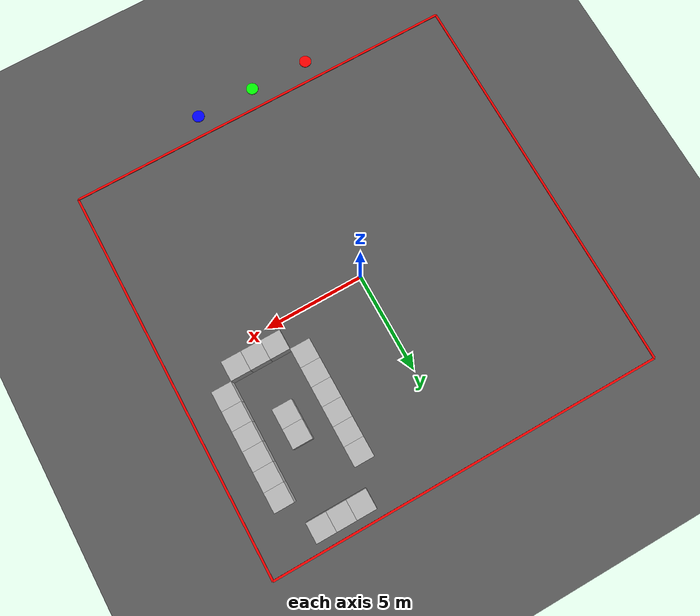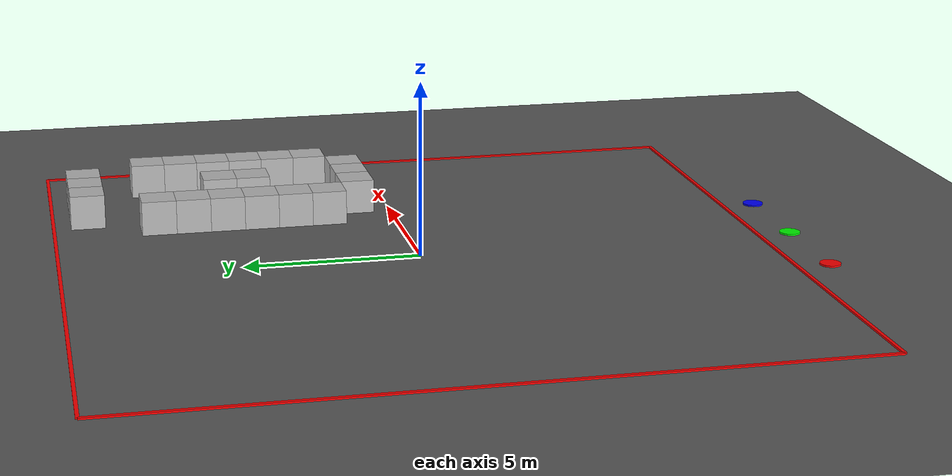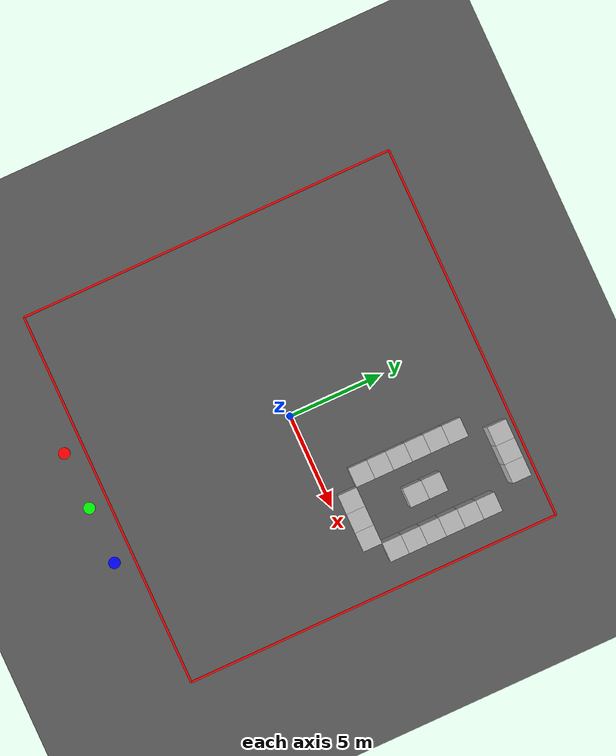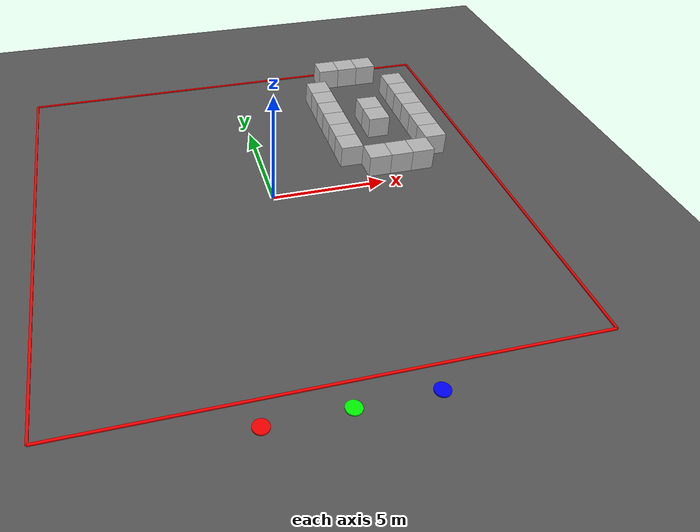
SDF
<sdf version="1.7">
 <world name="quadcopter_world">
  <physics type="ode"/>
  <scene><ambient>0.4 0.4 0.4 1</ambient><background>0.7 0.85 1 1</background><shadows>true</shadows></scene>
  <light type="directional" name="sun">
   <pose>0 0 50 0 0 0</pose>
   <diffuse>1 1 1 1</diffuse>
   <specular>1 1 1 1</specular>
   <attenuation>
    <range>1000</range>
    <constant>0.9</constant>
    <linear>0.01</linear>
    <quadratic>0.001</quadratic>
   </attenuation>
   <direction>-0.4 -0.2 -1</direction>
  </light>
  <model name="ground_plane">
   <static>true</static>
   <link name="link">
    <collision name="collision">
     <geometry><plane><normal>0 0 1</normal><size>200 200</size></plane></geometry>
    </collision>
    <visual name="visual">
     <geometry><plane><normal>0 0 1</normal><size>200 200</size></plane></geometry>
     <material><ambient>0.3 0.3 0.3 1</ambient><diffuse>0.35 0.35 0.35 1</diffuse></material>
    </visual>
   </link>
  </model>
  <model name="pad_x1">
   <static>true</static>
   <pose>-3 -11 0 0 0 0</pose>
   <link name="link">
    <visual name="visual">
     <geometry><cylinder><radius>0.3</radius><length>0.05</length></cylinder></geometry>
     <material><ambient>1 0 0 1</ambient><diffuse>1 0 0 1</diffuse></material>
    </visual>
   </link>
  </model>
  <model name="pad_x2">
   <static>true</static>
   <pose>0 -11 0 0 0 0</pose>
   <link name="link">
    <visual name="visual">
     <geometry><cylinder><radius>0.3</radius><length>0.05</length></cylinder></geometry>
     <material><ambient>0 1 0 1</ambient><diffuse>0 1 0 1</diffuse></material>
    </visual>
   </link>
  </model>
  <model name="pad_x3">
   <static>true</static>
   <pose>3 -11 0 0 0 0</pose>
   <link name="link">
    <visual name="visual">
     <geometry><cylinder><radius>0.3</radius><length>0.05</length></cylinder></geometry>
     <material><ambient>0 0 1 1</ambient><diffuse>0 0 1 1</diffuse></material>
    </visual>
   </link>
  </model>
  <model name="search_area_outline">
   <static>true</static>
   <link name="line_bottom">
    <visual name="vis">
     <geometry><box><size>20 0.1 0.05</size></box></geometry>
     <material><ambient>1 0 0 1</ambient><diffuse>1 0 0 1</diffuse></material>
    </visual>
    <pose>0 -10 0.01 0 0 0</pose>
   </link>
   <link name="line_top">
    <visual name="vis">
     <geometry><box><size>20 0.1 0.05</size></box></geometry>
     <material><ambient>1 0 0 1</ambient><diffuse>1 0 0 1</diffuse></material>
    </visual>
    <pose>0 10 0.01 0 0 0</pose>
   </link>
   <link name="line_left">
    <visual name="vis">
     <geometry><box><size>0.1 20 0.05</size></box></geometry>
     <material><ambient>1 0 0 1</ambient><diffuse>1 0 0 1</diffuse></material>
    </visual>
    <pose>-10 0 0.01 0 0 0</pose>
   </link>
   <link name="line_right">
    <visual name="vis">
     <geometry><box><size>0.1 20 0.05</size></box></geometry>
     <material><ambient>1 0 0 1</ambient><diffuse>1 0 0 1</diffuse></material>
    </visual>
    <pose>10 0 0.01 0 0 0</pose>
   </link>
  </model>
  <model name="corridor_layout">
   <static>true</static>
   <link name="box1">
    <pose>4 2 0.5 0 0 0</pose>
    <collision name="c"><geometry><box><size>1 1 1</size></box></geometry></collision>
    <visual name="v"><geometry><box><size>1 1 1</size></box></geometry></visual>
   </link>
   <link name="box2">
    <pose>4 3 0.5 0 0 0</pose>
    <collision name="c"><geometry><box><size>1 1 1</size></box></geometry></collision>
    <visual name="v"><geometry><box><size>1 1 1</size></box></geometry></visual>
   </link>
   <link name="box3">
    <pose>4 4 0.5 0 0 0</pose>
    <collision name="c"><geometry><box><size>1 1 1</size></box></geometry></collision>
    <visual name="v"><geometry><box><size>1 1 1</size></box></geometry></visual>
   </link>
   <link name="box4">
    <pose>4 5 0.5 0 0 0</pose>
    <collision name="c"><geometry><box><size>1 1 1</size></box></geometry></collision>
    <visual name="v"><geometry><box><size>1 1 1</size></box></geometry></visual>
   </link>
   <link name="box5">
    <pose>4 6 0.5 0 0 0</pose>
    <collision name="c"><geometry><box><size>1 1 1</size></box></geometry></collision>
    <visual name="v"><geometry><box><size>1 1 1</size></box></geometry></visual>
   </link>
   <link name="box6">
    <pose>4 7 0.5 0 0 0</pose>
    <collision name="c"><geometry><box><size>1 1 1</size></box></geometry></collision>
    <visual name="v"><geometry><box><size>1 1 1</size></box></geometry></visual>
   </link>
   <link name="box7">
    <pose>8 2 0.5 0 0 0</pose>
    <collision name="c"><geometry><box><size>1 1 1</size></box></geometry></collision>
    <visual name="v"><geometry><box><size>1 1 1</size></box></geometry></visual>
   </link>
   <link name="box8">
    <pose>8 3 0.5 0 0 0</pose>
    <collision name="c"><geometry><box><size>1 1 1</size></box></geometry></collision>
    <visual name="v"><geometry><box><size>1 1 1</size></box></geometry></visual>
   </link>
   <link name="box9">
    <pose>8 4 0.5 0 0 0</pose>
    <collision name="c"><geometry><box><size>1 1 1</size></box></geometry></collision>
    <visual name="v"><geometry><box><size>1 1 1</size></box></geometry></visual>
   </link>
   <link name="box10">
    <pose>8 5 0.5 0 0 0</pose>
    <collision name="c"><geometry><box><size>1 1 1</size></box></geometry></collision>
    <visual name="v"><geometry><box><size>1 1 1</size></box></geometry></visual>
   </link>
   <link name="box11">
    <pose>8 6 0.5 0 0 0</pose>
    <collision name="c"><geometry><box><size>1 1 1</size></box></geometry></collision>
    <visual name="v"><geometry><box><size>1 1 1</size></box></geometry></visual>
   </link>
   <link name="box12">
    <pose>8 7 0.5 0 0 0</pose>
    <collision name="c"><geometry><box><size>1 1 1</size></box></geometry></collision>
    <visual name="v"><geometry><box><size>1 1 1</size></box></geometry></visual>
   </link>
   <link name="box13">
    <pose>5 9 0.5 0 0 0</pose>
    <collision name="c"><geometry><box><size>1 1 1</size></box></geometry></collision>
    <visual name="v"><geometry><box><size>1 1 1</size></box></geometry></visual>
   </link>
   <link name="box14">
    <pose>6 9 0.5 0 0 0</pose>
    <collision name="c"><geometry><box><size>1 1 1</size></box></geometry></collision>
    <visual name="v"><geometry><box><size>1 1 1</size></box></geometry></visual>
   </link>
   <link name="box15">
    <pose>7 9 0.5 0 0 0</pose>
    <collision name="c"><geometry><box><size>1 1 1</size></box></geometry></collision>
    <visual name="v"><geometry><box><size>1 1 1</size></box></geometry></visual>
   </link>
   <link name="box16">
    <pose>5 1 0.5 0 0 0</pose>
    <collision name="c"><geometry><box><size>1 1 1</size></box></geometry></collision>
    <visual name="v"><geometry><box><size>1 1 1</size></box></geometry></visual>
   </link>
   <link name="box17">
    <pose>6 1 0.5 0 0 0</pose>
    <collision name="c"><geometry><box><size>1 1 1</size></box></geometry></collision>
    <visual name="v"><geometry><box><size>1 1 1</size></box></geometry></visual>
   </link>
   <link name="box18">
    <pose>7 1 0.5 0 0 0</pose>
    <collision name="c"><geometry><box><size>1 1 1</size></box></geometry></collision>
    <visual name="v"><geometry><box><size>1 1 1</size></box></geometry></visual>
   </link>
   <link name="box19">
    <pose>6 4 0.5 0 0 0</pose>
    <collision name="c"><geometry><box><size>1 1 1</size></box></geometry></collision>
    <visual name="v"><geometry><box><size>1 1 1</size></box></geometry></visual>
   </link>
   <link name="box20">
    <pose>6 5 0.5 0 0 0</pose>
    <collision name="c"><geometry><box><size>1 1 1</size></box></geometry></collision>
    <visual name="v"><geometry><box><size>1 1 1</size></box></geometry></visual>
   </link>
  </model>
 </world>
</sdf>
